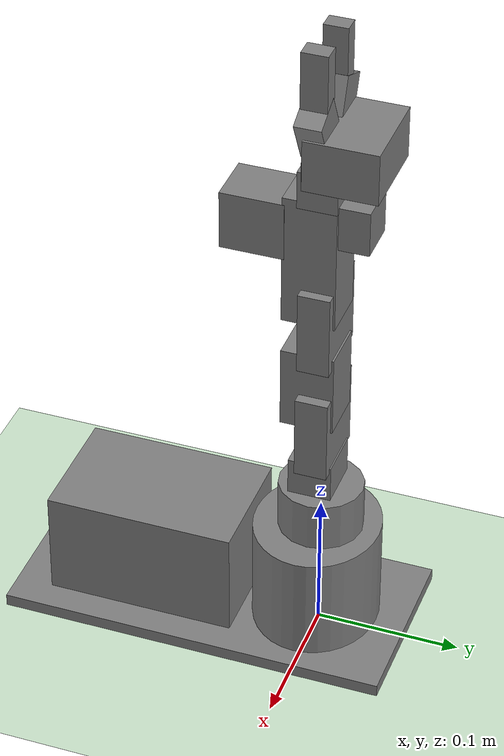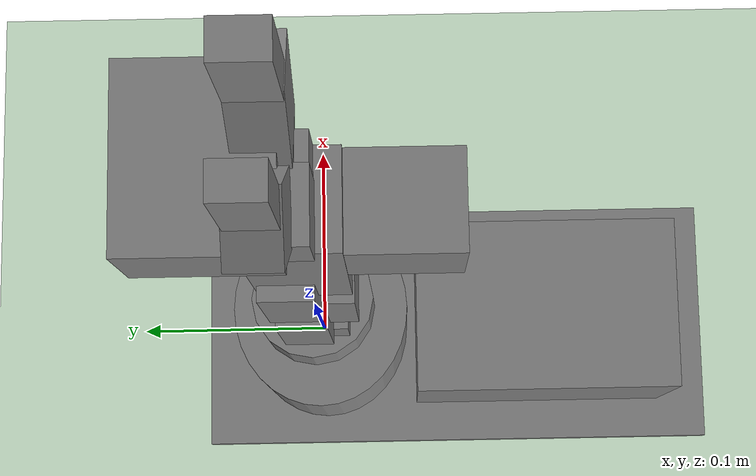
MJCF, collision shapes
<?xml version="1.0" encoding="utf-8"?>
<mujoco model="dofbot">
    <compiler angle="radian" meshdir="../meshes/"/>

    <option gravity="0 0 -9.81" integrator="implicitfast" cone="elliptic"/>

    <asset>
        <material name="grey_material" rgba="0.7 0.7 0.7 1"/>
        <material name="green_material" rgba="0 0.7 0 1"/>
        <material name="white_material" rgba="1 1 1 1"/>

        <mesh name="base_link_vis" file="visual/base_link.stl"/>
        <mesh name="base_rotation_link_vis" file="visual/link1.stl"/>
        <mesh name="upper_arm_link_vis" file="visual/link2.obj"/>
        <mesh name="forearm_link_vis" file="visual/link3.obj"/>
        <mesh name="wrist_link_vis" file="visual/link4.obj"/>
        <mesh name="wrist_roll_link_vis" file="visual/link5_flange.obj"/>
        <mesh name="gripper_left_link_vis" file="visual/left_finger.obj"/>
        <mesh name="gripper_right_link_vis" file="visual/right_finger.obj"/>

        <mesh name="base_link_col_1" file="collision/base_link_col_1.stl"/>
        <mesh name="base_link_col_2" file="collision/base_link_col_2.stl"/>
        <mesh name="base_link_col_3" file="collision/base_link_col_3.stl"/>
        <mesh name="base_rotation_link_col" file="collision/link1_col.stl"/>
        <mesh name="upper_arm_link_col_1" file="collision/link2_col_1.stl"/>
        <mesh name="upper_arm_link_col_2" file="collision/link2_col_2.stl"/>
        <mesh name="forearm_link_col_1" file="collision/link3_col_1.stl"/>
        <mesh name="forearm_link_col_2" file="collision/link3_col_2.stl"/>
        <mesh name="wrist_link_col_1" file="collision/link4_col_1.stl"/>
        <mesh name="wrist_link_col_2" file="collision/link4_col_2.stl"/>
        <mesh name="wrist_link_col_3" file="collision/link4_col_3.stl"/>
        <mesh name="wrist_roll_link_col_1" file="collision/flange_col_1.stl"/>
        <mesh name="wrist_roll_link_col_2" file="collision/flange_col_2.stl"/>
        <mesh name="gripper_left_link_col_1" file="collision/left_finger_col_1.stl"/>
        <mesh name="gripper_left_link_col_2" file="collision/left_finger_col_2.stl"/>
        <mesh name="gripper_left_link_col_3" file="collision/left_finger_col_3.stl"/>
        <mesh name="gripper_right_link_col_1" file="collision/right_finger_col_1.stl"/>
        <mesh name="gripper_right_link_col_2" file="collision/right_finger_col_2.stl"/>
        <mesh name="gripper_right_link_col_3" file="collision/right_finger_col_3.stl"/>
    </asset>

    <default>
        <joint damping="0.5" frictionloss="0.1" armature="0.01"/>

        <default class="visual">
            <geom type="mesh" contype="0" conaffinity="0" group="1"/>
        </default>
        <default class="collision">
            <geom type="mesh" group="0"/>
        </default>

        <default class="silicone_pad">
            <geom type="mesh" group="0" friction="2.0 0.1 0.0001" solimp="0.95 0.99 0.001" solref="0.004 1"/>
        </default>
    </default>

    <worldbody>
        <light pos="0 0 1.5" dir="0 0 -1" directional="true"/>
        <geom name="floor" type="plane" size="1 1 0.05" rgba="0.8 0.9 0.8 1" pos="0 0 0"/>

        <body name="base_link" pos="0 0 0">
            <inertial pos="0.000065 -0.048265 0.021267" mass="0.369776"
                      fullinertia="0.00206195 0.00062736 0.00210250 -0.00000069 -0.00000073 -0.00032039"/>
            <geom class="visual" mesh="base_link_vis" material="grey_material"/>
            <geom class="collision" mesh="base_link_col_1"/>
            <geom class="collision" mesh="base_link_col_2"/>
            <geom class="collision" mesh="base_link_col_3"/>

            <body name="base_rotation_link" pos="0 0 0.064">
                <inertial pos="0.000003 0.000000 0.018653" mass="0.052312"
                          fullinertia="0.00001691 0.00002055 0.00001885 0.00000000 -0.00000010 0.00000000"/>
                <joint name="base_rotation_joint" type="hinge" axis="0 0 1" range="-1.5708 1.5708"/>
                <geom class="visual" mesh="base_rotation_link_vis" material="green_material"/>
                <geom class="collision" mesh="base_rotation_link_col"/>

                <body name="upper_arm_link" pos="0 0 0.0435" euler="0 1.5708 0">
                    <inertial pos="-0.024890 -0.002259 -0.000080" mass="0.085210"
                              fullinertia="0.00001575 0.00007182 0.00006650 0.00000237 0.00000041 -0.00000002"/>
                    <joint name="upper_arm_joint" type="hinge" axis="0 0 1" range="-1.5708 1.5708"/>
                    <geom class="visual" mesh="upper_arm_link_vis" material="grey_material"/>
                    <geom class="collision" mesh="upper_arm_link_col_1"/>
                    <geom class="collision" mesh="upper_arm_link_col_2"/>

                    <body name="forearm_link" pos="-0.08285 0 0">
                        <inertial pos="-0.024890 -0.002259 -0.000650" mass="0.085210"
                                  fullinertia="0.00001575 0.00007182 0.00006650 0.00000237 0.00000039 -0.00000003"/>
                        <joint name="forearm_joint" type="hinge" axis="0 0 1" range="-1.5708 1.5708"/>
                        <geom class="visual" mesh="forearm_link_vis" material="green_material"/>
                        <geom class="collision" mesh="forearm_link_col_1"/>
                        <geom class="collision" mesh="forearm_link_col_2"/>

                        <body name="wrist_link" pos="-0.08285 0 0">
                            <inertial pos="-0.038494 -0.004349 -0.000785" mass="0.160515"
                                      fullinertia="0.00007571 0.00010711 0.00016261 0.00000562 -0.00000005 0.00000063"/>
                            <joint name="wrist_pitch_joint" type="hinge" axis="0 0 1" range="-1.5708 1.5708"/>
                            <geom class="visual" mesh="wrist_link_vis" material="grey_material"/>
                            <geom class="collision" mesh="wrist_link_col_1"/>
                            <geom class="collision" mesh="wrist_link_col_2"/>
                            <geom class="collision" mesh="wrist_link_col_3"/>

                            <body name="wrist_roll_link" pos="-0.18385 -0.00215 -0.000605" euler="0 -1.5708 0">
                                <inertial pos="0.002622 0.017797 0.030802" mass="0.091378"
                                          fullinertia="0.00002550 0.00002286 0.00002965 -0.00000057 -0.00000065 -0.00000404"/>
                                <joint name="wrist_roll_joint" type="hinge" axis="0 0 1" range="-1.5708 3.1416"/>

                                <camera name="eye_in_hand" pos="0 0.05 -0.05" fovy="110"/>

                                <geom class="visual" mesh="wrist_roll_link_vis" material="white_material" pos="0 0 -0.11"/>
                                <geom class="collision" mesh="wrist_roll_link_col_1" pos="0 0 -0.11"/>
                                <geom class="collision" mesh="wrist_roll_link_col_2" pos="0 0 -0.11"/>

                                <body name="gripper_left_link" pos="0 0 0">
                                    <inertial pos="0.016595 -0.001857 0.062980" mass="0.006329"
                                              fullinertia="0.00000356 0.00000378 0.00000034 -0.00000001 -0.00000037 -0.00000016"/>
                                    <joint name="gripper_left_joint" type="slide" axis="1 0 0" range="-0.03 0.03"/>
                                    <geom class="visual" mesh="gripper_left_link_vis" material="white_material" pos="0 0 -0.11"/>
                                    <geom class="silicone_pad" mesh="gripper_left_link_col_1" pos="0 0 -0.11"/>
                                    <geom class="silicone_pad" mesh="gripper_left_link_col_2" pos="0 0 -0.11"/>
                                    <geom class="silicone_pad" mesh="gripper_left_link_col_3" pos="0 0 -0.11"/>
                                </body>

                                <body name="gripper_right_link" pos="0 0 0">
                                    <inertial pos="-0.016626 -0.001230 0.064650" mass="0.005998"
                                              fullinertia="0.00000330 0.00000348 0.00000032 0.00000002 0.00000032 -0.00000022"/>
                                    <joint name="gripper_right_joint" type="slide" axis="1 0 0" range="-0.03 0.03"/>
                                    <geom class="visual" mesh="gripper_right_link_vis" material="white_material" pos="0 0 -0.11"/>
                                    <geom class="silicone_pad" mesh="gripper_right_link_col_1" pos="0 0 -0.11"/>
                                    <geom class="silicone_pad" mesh="gripper_right_link_col_2" pos="0 0 -0.11"/>
                                    <geom class="silicone_pad" mesh="gripper_right_link_col_3" pos="0 0 -0.11"/>
                                </body>

                                <body name="gripper_tcp" pos="0 0 0.0925">
                                    <inertial pos="0 0 0" mass="1e-6" diaginertia="1e-10 1e-10 1e-10"/>
                                    <joint name="gripper_tcp_joint" type="slide" axis="0 0 1" range="-0.05 0.20"/>
                                </body>
                            </body>
                        </body>
                    </body>
                </body>
            </body>
        </body>
    </worldbody>

    <contact>
        <exclude body1="base_link" body2="upper_arm_link"/>
        <exclude body1="gripper_left_link" body2="upper_arm_link"/>
        <exclude body1="gripper_left_link" body2="forearm_link"/>
        <exclude body1="gripper_left_link" body2="wrist_link"/>
        <exclude body1="gripper_left_link" body2="gripper_right_link"/>
        <exclude body1="base_rotation_link" body2="forearm_link"/>
        <exclude body1="upper_arm_link" body2="wrist_roll_link"/>
        <exclude body1="upper_arm_link" body2="gripper_right_link"/>
        <exclude body1="forearm_link" body2="wrist_roll_link"/>
        <exclude body1="forearm_link" body2="gripper_right_link"/>
        <exclude body1="wrist_link" body2="gripper_right_link"/>
        <exclude body1="gripper_tcp" body2="upper_arm_link"/>
        <exclude body1="gripper_tcp" body2="forearm_link"/>
        <exclude body1="gripper_tcp" body2="wrist_link"/>
        <exclude body1="gripper_tcp" body2="gripper_left_link"/>
        <exclude body1="gripper_tcp" body2="gripper_right_link"/>
    </contact>

    <actuator>
        <position name="motor_base_rotation" joint="base_rotation_joint" ctrlrange="-1.5708 1.5708" forcerange="-0.3 0.3" kp="20"/>
        <position name="motor_upper_arm" joint="upper_arm_joint" ctrlrange="-1.5708 1.5708" forcerange="-0.3 0.3" kp="20"/>
        <position name="motor_forearm" joint="forearm_joint" ctrlrange="-1.5708 1.5708" forcerange="-0.3 0.3" kp="20"/>
        <position name="motor_wrist_pitch" joint="wrist_pitch_joint" ctrlrange="-1.5708 1.5708" forcerange="-0.3 0.3" kp="20"/>
        <position name="motor_wrist_roll" joint="wrist_roll_joint" ctrlrange="-1.5708 3.1416" forcerange="-0.3 0.3" kp="10"/>

        <position name="motor_gripper_left" joint="gripper_left_joint" ctrlrange="-0.03 0.03" forcerange="-5.0 5.0" kp="100"/>
    </actuator>

    <!-- gripper_right 镜像: gripper_right = 0 + (-1)×gripper_left -->
    <equality>
        <joint joint1="gripper_right_joint" joint2="gripper_left_joint" polycoef="0 -1 0 0 0"/>
    </equality>

</mujoco>
